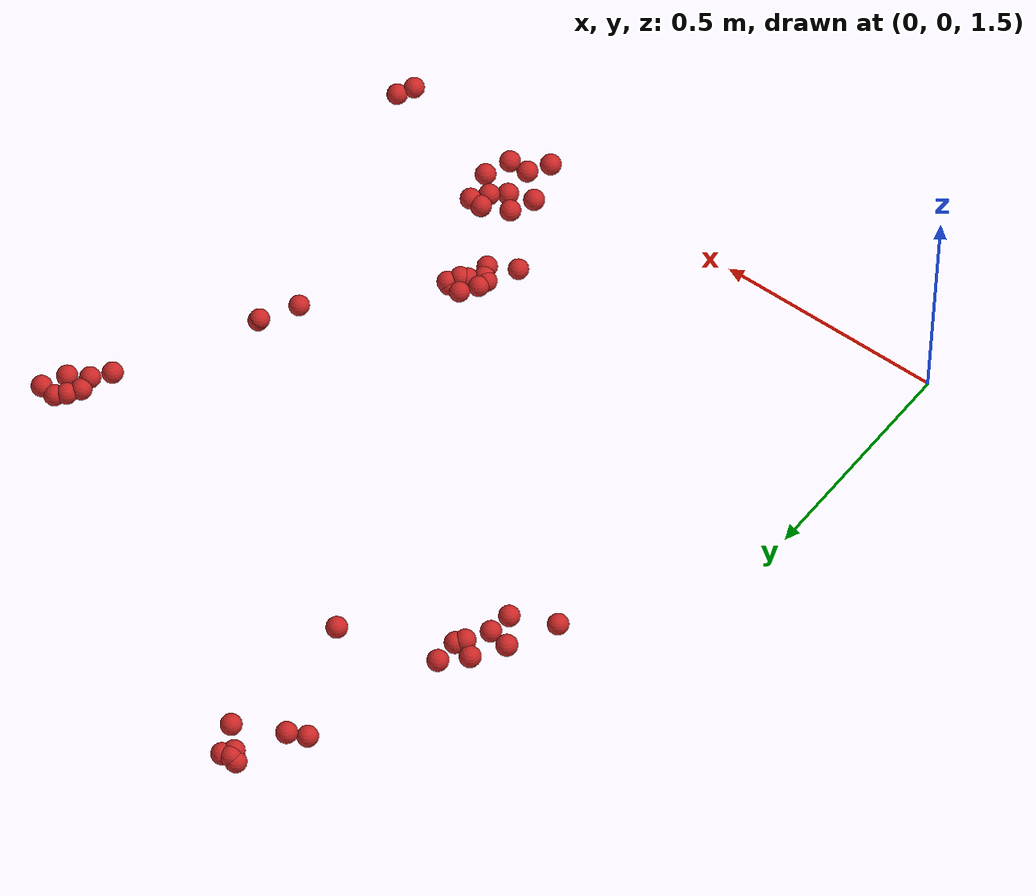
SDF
<sdf version="1.4">
 <model name="fruit_population">
  <static>true</static>
  <link name="fruit_30">
   <pose>0.1953439239124795 0.9947380264028824 1.5883068501369029 0 0 0</pose>
   <collision name="fruit_collision_30"><geometry><sphere><radius>0.022</radius></sphere></geometry></collision>
   <visual name="visual">
    <geometry><sphere><radius>0.022</radius></sphere></geometry>
    <material><script><name>Gazebo/Red</name></script></material>
   </visual>
   <inertial>
    <mass>0.05</mass>
    <inertia>
     <ixx>9.679999999999999e-06</ixx>
     <ixy>0.0</ixy>
     <ixz>0.0</ixz>
     <iyy>9.679999999999999e-06</iyy>
     <iyz>0.0</iyz>
     <izz>9.679999999999999e-06</izz>
    </inertia>
   </inertial>
   <sensor name="fruit_contact_30" type="contact">
    <plugin name="contact_plugin_30" filename="libcontact_plugin.so"/>
    <contact><collision>fruit_collision_30</collision><topic>fruit_contact_topic_30</topic></contact>
   </sensor>
  </link>
  <link name="fruit_57">
   <pose>0.47114865512667564 1.3425937243176058 1.725990794411494 0 0 0</pose>
   <collision name="fruit_collision_57"><geometry><sphere><radius>0.022</radius></sphere></geometry></collision>
   <visual name="visual">
    <geometry><sphere><radius>0.022</radius></sphere></geometry>
    <material><script><name>Gazebo/Red</name></script></material>
   </visual>
   <inertial>
    <mass>0.05</mass>
    <inertia>
     <ixx>9.679999999999999e-06</ixx>
     <ixy>0.0</ixy>
     <ixz>0.0</ixz>
     <iyy>9.679999999999999e-06</iyy>
     <iyz>0.0</iyz>
     <izz>9.679999999999999e-06</izz>
    </inertia>
   </inertial>
   <sensor name="fruit_contact_57" type="contact">
    <plugin name="contact_plugin_57" filename="libcontact_plugin.so"/>
    <contact><collision>fruit_collision_57</collision><topic>fruit_contact_topic_57</topic></contact>
   </sensor>
  </link>
  <link name="fruit_61">
   <pose>0.15351702591759156 1.2174833189412329 1.7927818443910681 0 0 0</pose>
   <collision name="fruit_collision_61"><geometry><sphere><radius>0.022</radius></sphere></geometry></collision>
   <visual name="visual">
    <geometry><sphere><radius>0.022</radius></sphere></geometry>
    <material><script><name>Gazebo/Red</name></script></material>
   </visual>
   <inertial>
    <mass>0.05</mass>
    <inertia>
     <ixx>9.679999999999999e-06</ixx>
     <ixy>0.0</ixy>
     <ixz>0.0</ixz>
     <iyy>9.679999999999999e-06</iyy>
     <iyz>0.0</iyz>
     <izz>9.679999999999999e-06</izz>
    </inertia>
   </inertial>
   <sensor name="fruit_contact_61" type="contact">
    <plugin name="contact_plugin_61" filename="libcontact_plugin.so"/>
    <contact><collision>fruit_collision_61</collision><topic>fruit_contact_topic_61</topic></contact>
   </sensor>
  </link>
  <link name="fruit_88">
   <pose>0.8423228160091369 0.2658816447398887 1.5051182358513138 0 0 0</pose>
   <collision name="fruit_collision_88"><geometry><sphere><radius>0.022</radius></sphere></geometry></collision>
   <visual name="visual">
    <geometry><sphere><radius>0.022</radius></sphere></geometry>
    <material><script><name>Gazebo/Red</name></script></material>
   </visual>
   <inertial>
    <mass>0.05</mass>
    <inertia>
     <ixx>9.679999999999999e-06</ixx>
     <ixy>0.0</ixy>
     <ixz>0.0</ixz>
     <iyy>9.679999999999999e-06</iyy>
     <iyz>0.0</iyz>
     <izz>9.679999999999999e-06</izz>
    </inertia>
   </inertial>
   <sensor name="fruit_contact_88" type="contact">
    <plugin name="contact_plugin_88" filename="libcontact_plugin.so"/>
    <contact><collision>fruit_collision_88</collision><topic>fruit_contact_topic_88</topic></contact>
   </sensor>
  </link>
  <link name="fruit_95">
   <pose>0.7572380153443766 0.32868442509446527 1.845716387686218 0 0 0</pose>
   <collision name="fruit_collision_95"><geometry><sphere><radius>0.022</radius></sphere></geometry></collision>
   <visual name="visual">
    <geometry><sphere><radius>0.022</radius></sphere></geometry>
    <material><script><name>Gazebo/Red</name></script></material>
   </visual>
   <inertial>
    <mass>0.05</mass>
    <inertia>
     <ixx>9.679999999999999e-06</ixx>
     <ixy>0.0</ixy>
     <ixz>0.0</ixz>
     <iyy>9.679999999999999e-06</iyy>
     <iyz>0.0</iyz>
     <izz>9.679999999999999e-06</izz>
    </inertia>
   </inertial>
   <sensor name="fruit_contact_95" type="contact">
    <plugin name="contact_plugin_95" filename="libcontact_plugin.so"/>
    <contact><collision>fruit_collision_95</collision><topic>fruit_contact_topic_95</topic></contact>
   </sensor>
  </link>
  <link name="fruit_115">
   <pose>1.1465218641619523 0.6089338509151114 1.4964389549650658 0 0 0</pose>
   <collision name="fruit_collision_115"><geometry><sphere><radius>0.022</radius></sphere></geometry></collision>
   <visual name="visual">
    <geometry><sphere><radius>0.022</radius></sphere></geometry>
    <material><script><name>Gazebo/Red</name></script></material>
   </visual>
   <inertial>
    <mass>0.05</mass>
    <inertia>
     <ixx>9.679999999999999e-06</ixx>
     <ixy>0.0</ixy>
     <ixz>0.0</ixz>
     <iyy>9.679999999999999e-06</iyy>
     <iyz>0.0</iyz>
     <izz>9.679999999999999e-06</izz>
    </inertia>
   </inertial>
   <sensor name="fruit_contact_115" type="contact">
    <plugin name="contact_plugin_115" filename="libcontact_plugin.so"/>
    <contact><collision>fruit_collision_115</collision><topic>fruit_contact_topic_115</topic></contact>
   </sensor>
  </link>
  <link name="fruit_127">
   <pose>0.4196036037642855 1.5037992499797308 1.5877587647927613 0 0 0</pose>
   <collision name="fruit_collision_127"><geometry><sphere><radius>0.022</radius></sphere></geometry></collision>
   <visual name="visual">
    <geometry><sphere><radius>0.022</radius></sphere></geometry>
    <material><script><name>Gazebo/Red</name></script></material>
   </visual>
   <inertial>
    <mass>0.05</mass>
    <inertia>
     <ixx>9.679999999999999e-06</ixx>
     <ixy>0.0</ixy>
     <ixz>0.0</ixz>
     <iyy>9.679999999999999e-06</iyy>
     <iyz>0.0</iyz>
     <izz>9.679999999999999e-06</izz>
    </inertia>
   </inertial>
   <sensor name="fruit_contact_127" type="contact">
    <plugin name="contact_plugin_127" filename="libcontact_plugin.so"/>
    <contact><collision>fruit_collision_127</collision><topic>fruit_contact_topic_127</topic></contact>
   </sensor>
  </link>
  <link name="fruit_139">
   <pose>0.4129960803627208 1.5744963180922487 1.6832606228239315 0 0 0</pose>
   <collision name="fruit_collision_139"><geometry><sphere><radius>0.022</radius></sphere></geometry></collision>
   <visual name="visual">
    <geometry><sphere><radius>0.022</radius></sphere></geometry>
    <material><script><name>Gazebo/Red</name></script></material>
   </visual>
   <inertial>
    <mass>0.05</mass>
    <inertia>
     <ixx>9.679999999999999e-06</ixx>
     <ixy>0.0</ixy>
     <ixz>0.0</ixz>
     <iyy>9.679999999999999e-06</iyy>
     <iyz>0.0</iyz>
     <izz>9.679999999999999e-06</izz>
    </inertia>
   </inertial>
   <sensor name="fruit_contact_139" type="contact">
    <plugin name="contact_plugin_139" filename="libcontact_plugin.so"/>
    <contact><collision>fruit_collision_139</collision><topic>fruit_contact_topic_139</topic></contact>
   </sensor>
  </link>
  <link name="fruit_142">
   <pose>1.2325543173819957 0.10833704455351517 1.6578817870155198 0 0 0</pose>
   <collision name="fruit_collision_142"><geometry><sphere><radius>0.022</radius></sphere></geometry></collision>
   <visual name="visual">
    <geometry><sphere><radius>0.022</radius></sphere></geometry>
    <material><script><name>Gazebo/Red</name></script></material>
   </visual>
   <inertial>
    <mass>0.05</mass>
    <inertia>
     <ixx>9.679999999999999e-06</ixx>
     <ixy>0.0</ixy>
     <ixz>0.0</ixz>
     <iyy>9.679999999999999e-06</iyy>
     <iyz>0.0</iyz>
     <izz>9.679999999999999e-06</izz>
    </inertia>
   </inertial>
   <sensor name="fruit_contact_142" type="contact">
    <plugin name="contact_plugin_142" filename="libcontact_plugin.so"/>
    <contact><collision>fruit_collision_142</collision><topic>fruit_contact_topic_142</topic></contact>
   </sensor>
  </link>
  <link name="fruit_161">
   <pose>1.1843490267038408 1.1489983251072646 1.7833252640236925 0 0 0</pose>
   <collision name="fruit_collision_161"><geometry><sphere><radius>0.022</radius></sphere></geometry></collision>
   <visual name="visual">
    <geometry><sphere><radius>0.022</radius></sphere></geometry>
    <material><script><name>Gazebo/Red</name></script></material>
   </visual>
   <inertial>
    <mass>0.05</mass>
    <inertia>
     <ixx>9.679999999999999e-06</ixx>
     <ixy>0.0</ixy>
     <ixz>0.0</ixz>
     <iyy>9.679999999999999e-06</iyy>
     <iyz>0.0</iyz>
     <izz>9.679999999999999e-06</izz>
    </inertia>
   </inertial>
   <sensor name="fruit_contact_161" type="contact">
    <plugin name="contact_plugin_161" filename="libcontact_plugin.so"/>
    <contact><collision>fruit_collision_161</collision><topic>fruit_contact_topic_161</topic></contact>
   </sensor>
  </link>
  <link name="fruit_162">
   <pose>0.7930180529071695 0.22501933369284538 1.8330414207158725 0 0 0</pose>
   <collision name="fruit_collision_162"><geometry><sphere><radius>0.022</radius></sphere></geometry></collision>
   <visual name="visual">
    <geometry><sphere><radius>0.022</radius></sphere></geometry>
    <material><script><name>Gazebo/Red</name></script></material>
   </visual>
   <inertial>
    <mass>0.05</mass>
    <inertia>
     <ixx>9.679999999999999e-06</ixx>
     <ixy>0.0</ixy>
     <ixz>0.0</ixz>
     <iyy>9.679999999999999e-06</iyy>
     <iyz>0.0</iyz>
     <izz>9.679999999999999e-06</izz>
    </inertia>
   </inertial>
   <sensor name="fruit_contact_162" type="contact">
    <plugin name="contact_plugin_162" filename="libcontact_plugin.so"/>
    <contact><collision>fruit_collision_162</collision><topic>fruit_contact_topic_162</topic></contact>
   </sensor>
  </link>
  <link name="fruit_198">
   <pose>0.9463491575535632 0.3714392769473238 1.490703312071319 0 0 0</pose>
   <collision name="fruit_collision_198"><geometry><sphere><radius>0.022</radius></sphere></geometry></collision>
   <visual name="visual">
    <geometry><sphere><radius>0.022</radius></sphere></geometry>
    <material><script><name>Gazebo/Red</name></script></material>
   </visual>
   <inertial>
    <mass>0.05</mass>
    <inertia>
     <ixx>9.679999999999999e-06</ixx>
     <ixy>0.0</ixy>
     <ixz>0.0</ixz>
     <iyy>9.679999999999999e-06</iyy>
     <iyz>0.0</iyz>
     <izz>9.679999999999999e-06</izz>
    </inertia>
   </inertial>
   <sensor name="fruit_contact_198" type="contact">
    <plugin name="contact_plugin_198" filename="libcontact_plugin.so"/>
    <contact><collision>fruit_collision_198</collision><topic>fruit_contact_topic_198</topic></contact>
   </sensor>
  </link>
  <link name="fruit_219">
   <pose>0.9114891988321225 0.37542731420298847 1.4875919798439765 0 0 0</pose>
   <collision name="fruit_collision_219"><geometry><sphere><radius>0.022</radius></sphere></geometry></collision>
   <visual name="visual">
    <geometry><sphere><radius>0.022</radius></sphere></geometry>
    <material><script><name>Gazebo/Red</name></script></material>
   </visual>
   <inertial>
    <mass>0.05</mass>
    <inertia>
     <ixx>9.679999999999999e-06</ixx>
     <ixy>0.0</ixy>
     <ixz>0.0</ixz>
     <iyy>9.679999999999999e-06</iyy>
     <iyz>0.0</iyz>
     <izz>9.679999999999999e-06</izz>
    </inertia>
   </inertial>
   <sensor name="fruit_contact_219" type="contact">
    <plugin name="contact_plugin_219" filename="libcontact_plugin.so"/>
    <contact><collision>fruit_collision_219</collision><topic>fruit_contact_topic_219</topic></contact>
   </sensor>
  </link>
  <link name="fruit_225">
   <pose>0.825757297331671 0.3241415983973811 1.81152946052727 0 0 0</pose>
   <collision name="fruit_collision_225"><geometry><sphere><radius>0.022</radius></sphere></geometry></collision>
   <visual name="visual">
    <geometry><sphere><radius>0.022</radius></sphere></geometry>
    <material><script><name>Gazebo/Red</name></script></material>
   </visual>
   <inertial>
    <mass>0.05</mass>
    <inertia>
     <ixx>9.679999999999999e-06</ixx>
     <ixy>0.0</ixy>
     <ixz>0.0</ixz>
     <iyy>9.679999999999999e-06</iyy>
     <iyz>0.0</iyz>
     <izz>9.679999999999999e-06</izz>
    </inertia>
   </inertial>
   <sensor name="fruit_contact_225" type="contact">
    <plugin name="contact_plugin_225" filename="libcontact_plugin.so"/>
    <contact><collision>fruit_collision_225</collision><topic>fruit_contact_topic_225</topic></contact>
   </sensor>
  </link>
  <link name="fruit_226">
   <pose>0.22482942555807292 1.2559534237126855 1.7920383628639043 0 0 0</pose>
   <collision name="fruit_collision_226"><geometry><sphere><radius>0.022</radius></sphere></geometry></collision>
   <visual name="visual">
    <geometry><sphere><radius>0.022</radius></sphere></geometry>
    <material><script><name>Gazebo/Red</name></script></material>
   </visual>
   <inertial>
    <mass>0.05</mass>
    <inertia>
     <ixx>9.679999999999999e-06</ixx>
     <ixy>0.0</ixy>
     <ixz>0.0</ixz>
     <iyy>9.679999999999999e-06</iyy>
     <iyz>0.0</iyz>
     <izz>9.679999999999999e-06</izz>
    </inertia>
   </inertial>
   <sensor name="fruit_contact_226" type="contact">
    <plugin name="contact_plugin_226" filename="libcontact_plugin.so"/>
    <contact><collision>fruit_collision_226</collision><topic>fruit_contact_topic_226</topic></contact>
   </sensor>
  </link>
  <link name="fruit_250">
   <pose>0.48927605386436474 1.6795485319200134 1.6664037193798107 0 0 0</pose>
   <collision name="fruit_collision_250"><geometry><sphere><radius>0.022</radius></sphere></geometry></collision>
   <visual name="visual">
    <geometry><sphere><radius>0.022</radius></sphere></geometry>
    <material><script><name>Gazebo/Red</name></script></material>
   </visual>
   <inertial>
    <mass>0.05</mass>
    <inertia>
     <ixx>9.679999999999999e-06</ixx>
     <ixy>0.0</ixy>
     <ixz>0.0</ixz>
     <iyy>9.679999999999999e-06</iyy>
     <iyz>0.0</iyz>
     <izz>9.679999999999999e-06</izz>
    </inertia>
   </inertial>
   <sensor name="fruit_contact_250" type="contact">
    <plugin name="contact_plugin_250" filename="libcontact_plugin.so"/>
    <contact><collision>fruit_collision_250</collision><topic>fruit_contact_topic_250</topic></contact>
   </sensor>
  </link>
  <link name="fruit_258">
   <pose>0.8406809848028824 0.3952881294105425 1.8292511999713867 0 0 0</pose>
   <collision name="fruit_collision_258"><geometry><sphere><radius>0.022</radius></sphere></geometry></collision>
   <visual name="visual">
    <geometry><sphere><radius>0.022</radius></sphere></geometry>
    <material><script><name>Gazebo/Red</name></script></material>
   </visual>
   <inertial>
    <mass>0.05</mass>
    <inertia>
     <ixx>9.679999999999999e-06</ixx>
     <ixy>0.0</ixy>
     <ixz>0.0</ixz>
     <iyy>9.679999999999999e-06</iyy>
     <iyz>0.0</iyz>
     <izz>9.679999999999999e-06</izz>
    </inertia>
   </inertial>
   <sensor name="fruit_contact_258" type="contact">
    <plugin name="contact_plugin_258" filename="libcontact_plugin.so"/>
    <contact><collision>fruit_collision_258</collision><topic>fruit_contact_topic_258</topic></contact>
   </sensor>
  </link>
  <link name="fruit_267">
   <pose>0.8910781649394658 0.31356556353244475 1.8160510606643032 0 0 0</pose>
   <collision name="fruit_collision_267"><geometry><sphere><radius>0.022</radius></sphere></geometry></collision>
   <visual name="visual">
    <geometry><sphere><radius>0.022</radius></sphere></geometry>
    <material><script><name>Gazebo/Red</name></script></material>
   </visual>
   <inertial>
    <mass>0.05</mass>
    <inertia>
     <ixx>9.679999999999999e-06</ixx>
     <ixy>0.0</ixy>
     <ixz>0.0</ixz>
     <iyy>9.679999999999999e-06</iyy>
     <iyz>0.0</iyz>
     <izz>9.679999999999999e-06</izz>
    </inertia>
   </inertial>
   <sensor name="fruit_contact_267" type="contact">
    <plugin name="contact_plugin_267" filename="libcontact_plugin.so"/>
    <contact><collision>fruit_collision_267</collision><topic>fruit_contact_topic_267</topic></contact>
   </sensor>
  </link>
  <link name="fruit_271">
   <pose>0.940088516851205 0.3719517116784833 1.485086392965216 0 0 0</pose>
   <collision name="fruit_collision_271"><geometry><sphere><radius>0.022</radius></sphere></geometry></collision>
   <visual name="visual">
    <geometry><sphere><radius>0.022</radius></sphere></geometry>
    <material><script><name>Gazebo/Red</name></script></material>
   </visual>
   <inertial>
    <mass>0.05</mass>
    <inertia>
     <ixx>9.679999999999999e-06</ixx>
     <ixy>0.0</ixy>
     <ixz>0.0</ixz>
     <iyy>9.679999999999999e-06</iyy>
     <iyz>0.0</iyz>
     <izz>9.679999999999999e-06</izz>
    </inertia>
   </inertial>
   <sensor name="fruit_contact_271" type="contact">
    <plugin name="contact_plugin_271" filename="libcontact_plugin.so"/>
    <contact><collision>fruit_collision_271</collision><topic>fruit_contact_topic_271</topic></contact>
   </sensor>
  </link>
  <link name="fruit_298">
   <pose>0.7826878632884515 0.3740382635243226 1.837123454174254 0 0 0</pose>
   <collision name="fruit_collision_298"><geometry><sphere><radius>0.022</radius></sphere></geometry></collision>
   <visual name="visual">
    <geometry><sphere><radius>0.022</radius></sphere></geometry>
    <material><script><name>Gazebo/Red</name></script></material>
   </visual>
   <inertial>
    <mass>0.05</mass>
    <inertia>
     <ixx>9.679999999999999e-06</ixx>
     <ixy>0.0</ixy>
     <ixz>0.0</ixz>
     <iyy>9.679999999999999e-06</iyy>
     <iyz>0.0</iyz>
     <izz>9.679999999999999e-06</izz>
    </inertia>
   </inertial>
   <sensor name="fruit_contact_298" type="contact">
    <plugin name="contact_plugin_298" filename="libcontact_plugin.so"/>
    <contact><collision>fruit_collision_298</collision><topic>fruit_contact_topic_298</topic></contact>
   </sensor>
  </link>
  <link name="fruit_303">
   <pose>0.24411763191171787 1.316958065031089 1.7767340332265127 0 0 0</pose>
   <collision name="fruit_collision_303"><geometry><sphere><radius>0.022</radius></sphere></geometry></collision>
   <visual name="visual">
    <geometry><sphere><radius>0.022</radius></sphere></geometry>
    <material><script><name>Gazebo/Red</name></script></material>
   </visual>
   <inertial>
    <mass>0.05</mass>
    <inertia>
     <ixx>9.679999999999999e-06</ixx>
     <ixy>0.0</ixy>
     <ixz>0.0</ixz>
     <iyy>9.679999999999999e-06</iyy>
     <iyz>0.0</iyz>
     <izz>9.679999999999999e-06</izz>
    </inertia>
   </inertial>
   <sensor name="fruit_contact_303" type="contact">
    <plugin name="contact_plugin_303" filename="libcontact_plugin.so"/>
    <contact><collision>fruit_collision_303</collision><topic>fruit_contact_topic_303</topic></contact>
   </sensor>
  </link>
  <link name="fruit_313">
   <pose>0.2959741357857225 1.079869055589083 1.5743773590550187 0 0 0</pose>
   <collision name="fruit_collision_313"><geometry><sphere><radius>0.022</radius></sphere></geometry></collision>
   <visual name="visual">
    <geometry><sphere><radius>0.022</radius></sphere></geometry>
    <material><script><name>Gazebo/Red</name></script></material>
   </visual>
   <inertial>
    <mass>0.05</mass>
    <inertia>
     <ixx>9.679999999999999e-06</ixx>
     <ixy>0.0</ixy>
     <ixz>0.0</ixz>
     <iyy>9.679999999999999e-06</iyy>
     <iyz>0.0</iyz>
     <izz>9.679999999999999e-06</izz>
    </inertia>
   </inertial>
   <sensor name="fruit_contact_313" type="contact">
    <plugin name="contact_plugin_313" filename="libcontact_plugin.so"/>
    <contact><collision>fruit_collision_313</collision><topic>fruit_contact_topic_313</topic></contact>
   </sensor>
  </link>
  <link name="fruit_329">
   <pose>1.2116441522920494 1.2140231173309097 1.7749909301637465 0 0 0</pose>
   <collision name="fruit_collision_329"><geometry><sphere><radius>0.022</radius></sphere></geometry></collision>
   <visual name="visual">
    <geometry><sphere><radius>0.022</radius></sphere></geometry>
    <material><script><name>Gazebo/Red</name></script></material>
   </visual>
   <inertial>
    <mass>0.05</mass>
    <inertia>
     <ixx>9.679999999999999e-06</ixx>
     <ixy>0.0</ixy>
     <ixz>0.0</ixz>
     <iyy>9.679999999999999e-06</iyy>
     <iyz>0.0</iyz>
     <izz>9.679999999999999e-06</izz>
    </inertia>
   </inertial>
   <sensor name="fruit_contact_329" type="contact">
    <plugin name="contact_plugin_329" filename="libcontact_plugin.so"/>
    <contact><collision>fruit_collision_329</collision><topic>fruit_contact_topic_329</topic></contact>
   </sensor>
  </link>
  <link name="fruit_363">
   <pose>0.8824784132266889 0.32079947213528076 1.4897939472521613 0 0 0</pose>
   <collision name="fruit_collision_363"><geometry><sphere><radius>0.022</radius></sphere></geometry></collision>
   <visual name="visual">
    <geometry><sphere><radius>0.022</radius></sphere></geometry>
    <material><script><name>Gazebo/Red</name></script></material>
   </visual>
   <inertial>
    <mass>0.05</mass>
    <inertia>
     <ixx>9.679999999999999e-06</ixx>
     <ixy>0.0</ixy>
     <ixz>0.0</ixz>
     <iyy>9.679999999999999e-06</iyy>
     <iyz>0.0</iyz>
     <izz>9.679999999999999e-06</izz>
    </inertia>
   </inertial>
   <sensor name="fruit_contact_363" type="contact">
    <plugin name="contact_plugin_363" filename="libcontact_plugin.so"/>
    <contact><collision>fruit_collision_363</collision><topic>fruit_contact_topic_363</topic></contact>
   </sensor>
  </link>
  <link name="fruit_398">
   <pose>0.9031441780570889 0.2920876431144873 1.4948347089800738 0 0 0</pose>
   <collision name="fruit_collision_398"><geometry><sphere><radius>0.022</radius></sphere></geometry></collision>
   <visual name="visual">
    <geometry><sphere><radius>0.022</radius></sphere></geometry>
    <material><script><name>Gazebo/Red</name></script></material>
   </visual>
   <inertial>
    <mass>0.05</mass>
    <inertia>
     <ixx>9.679999999999999e-06</ixx>
     <ixy>0.0</ixy>
     <ixz>0.0</ixz>
     <iyy>9.679999999999999e-06</iyy>
     <iyz>0.0</iyz>
     <izz>9.679999999999999e-06</izz>
    </inertia>
   </inertial>
   <sensor name="fruit_contact_398" type="contact">
    <plugin name="contact_plugin_398" filename="libcontact_plugin.so"/>
    <contact><collision>fruit_collision_398</collision><topic>fruit_contact_topic_398</topic></contact>
   </sensor>
  </link>
  <link name="fruit_415">
   <pose>0.45666260715465185 1.67686071866723 1.6642265999402417 0 0 0</pose>
   <collision name="fruit_collision_415"><geometry><sphere><radius>0.022</radius></sphere></geometry></collision>
   <visual name="visual">
    <geometry><sphere><radius>0.022</radius></sphere></geometry>
    <material><script><name>Gazebo/Red</name></script></material>
   </visual>
   <inertial>
    <mass>0.05</mass>
    <inertia>
     <ixx>9.679999999999999e-06</ixx>
     <ixy>0.0</ixy>
     <ixz>0.0</ixz>
     <iyy>9.679999999999999e-06</iyy>
     <iyz>0.0</iyz>
     <izz>9.679999999999999e-06</izz>
    </inertia>
   </inertial>
   <sensor name="fruit_contact_415" type="contact">
    <plugin name="contact_plugin_415" filename="libcontact_plugin.so"/>
    <contact><collision>fruit_collision_415</collision><topic>fruit_contact_topic_415</topic></contact>
   </sensor>
  </link>
  <link name="fruit_470">
   <pose>1.2567121758646895 1.2031994960584476 1.772798370968893 0 0 0</pose>
   <collision name="fruit_collision_470"><geometry><sphere><radius>0.022</radius></sphere></geometry></collision>
   <visual name="visual">
    <geometry><sphere><radius>0.022</radius></sphere></geometry>
    <material><script><name>Gazebo/Red</name></script></material>
   </visual>
   <inertial>
    <mass>0.05</mass>
    <inertia>
     <ixx>9.679999999999999e-06</ixx>
     <ixy>0.0</ixy>
     <ixz>0.0</ixz>
     <iyy>9.679999999999999e-06</iyy>
     <iyz>0.0</iyz>
     <izz>9.679999999999999e-06</izz>
    </inertia>
   </inertial>
   <sensor name="fruit_contact_470" type="contact">
    <plugin name="contact_plugin_470" filename="libcontact_plugin.so"/>
    <contact><collision>fruit_collision_470</collision><topic>fruit_contact_topic_470</topic></contact>
   </sensor>
  </link>
  <link name="fruit_479">
   <pose>1.2815455421277329 1.2525161872644923 1.7706769535346538 0 0 0</pose>
   <collision name="fruit_collision_479"><geometry><sphere><radius>0.022</radius></sphere></geometry></collision>
   <visual name="visual">
    <geometry><sphere><radius>0.022</radius></sphere></geometry>
    <material><script><name>Gazebo/Red</name></script></material>
   </visual>
   <inertial>
    <mass>0.05</mass>
    <inertia>
     <ixx>9.679999999999999e-06</ixx>
     <ixy>0.0</ixy>
     <ixz>0.0</ixz>
     <iyy>9.679999999999999e-06</iyy>
     <iyz>0.0</iyz>
     <izz>9.679999999999999e-06</izz>
    </inertia>
   </inertial>
   <sensor name="fruit_contact_479" type="contact">
    <plugin name="contact_plugin_479" filename="libcontact_plugin.so"/>
    <contact><collision>fruit_collision_479</collision><topic>fruit_contact_topic_479</topic></contact>
   </sensor>
  </link>
  <link name="fruit_511">
   <pose>0.4690981213565273 1.6764857617529736 1.6719497670665402 0 0 0</pose>
   <collision name="fruit_collision_511"><geometry><sphere><radius>0.022</radius></sphere></geometry></collision>
   <visual name="visual">
    <geometry><sphere><radius>0.022</radius></sphere></geometry>
    <material><script><name>Gazebo/Red</name></script></material>
   </visual>
   <inertial>
    <mass>0.05</mass>
    <inertia>
     <ixx>9.679999999999999e-06</ixx>
     <ixy>0.0</ixy>
     <ixz>0.0</ixz>
     <iyy>9.679999999999999e-06</iyy>
     <iyz>0.0</iyz>
     <izz>9.679999999999999e-06</izz>
    </inertia>
   </inertial>
   <sensor name="fruit_contact_511" type="contact">
    <plugin name="contact_plugin_511" filename="libcontact_plugin.so"/>
    <contact><collision>fruit_collision_511</collision><topic>fruit_contact_topic_511</topic></contact>
   </sensor>
  </link>
  <link name="fruit_515">
   <pose>1.192076152510202 0.6830361380831811 1.490522250865585 0 0 0</pose>
   <collision name="fruit_collision_515"><geometry><sphere><radius>0.022</radius></sphere></geometry></collision>
   <visual name="visual">
    <geometry><sphere><radius>0.022</radius></sphere></geometry>
    <material><script><name>Gazebo/Red</name></script></material>
   </visual>
   <inertial>
    <mass>0.05</mass>
    <inertia>
     <ixx>9.679999999999999e-06</ixx>
     <ixy>0.0</ixy>
     <ixz>0.0</ixz>
     <iyy>9.679999999999999e-06</iyy>
     <iyz>0.0</iyz>
     <izz>9.679999999999999e-06</izz>
    </inertia>
   </inertial>
   <sensor name="fruit_contact_515" type="contact">
    <plugin name="contact_plugin_515" filename="libcontact_plugin.so"/>
    <contact><collision>fruit_collision_515</collision><topic>fruit_contact_topic_515</topic></contact>
   </sensor>
  </link>
  <link name="fruit_528">
   <pose>0.885931326582728 0.3434628142420193 1.493162627700119 0 0 0</pose>
   <collision name="fruit_collision_528"><geometry><sphere><radius>0.022</radius></sphere></geometry></collision>
   <visual name="visual">
    <geometry><sphere><radius>0.022</radius></sphere></geometry>
    <material><script><name>Gazebo/Red</name></script></material>
   </visual>
   <inertial>
    <mass>0.05</mass>
    <inertia>
     <ixx>9.679999999999999e-06</ixx>
     <ixy>0.0</ixy>
     <ixz>0.0</ixz>
     <iyy>9.679999999999999e-06</iyy>
     <iyz>0.0</iyz>
     <izz>9.679999999999999e-06</izz>
    </inertia>
   </inertial>
   <sensor name="fruit_contact_528" type="contact">
    <plugin name="contact_plugin_528" filename="libcontact_plugin.so"/>
    <contact><collision>fruit_collision_528</collision><topic>fruit_contact_topic_528</topic></contact>
   </sensor>
  </link>
  <link name="fruit_545">
   <pose>0.841687618452425 0.3667553433022155 1.8380721997524048 0 0 0</pose>
   <collision name="fruit_collision_545"><geometry><sphere><radius>0.022</radius></sphere></geometry></collision>
   <visual name="visual">
    <geometry><sphere><radius>0.022</radius></sphere></geometry>
    <material><script><name>Gazebo/Red</name></script></material>
   </visual>
   <inertial>
    <mass>0.05</mass>
    <inertia>
     <ixx>9.679999999999999e-06</ixx>
     <ixy>0.0</ixy>
     <ixz>0.0</ixz>
     <iyy>9.679999999999999e-06</iyy>
     <iyz>0.0</iyz>
     <izz>9.679999999999999e-06</izz>
    </inertia>
   </inertial>
   <sensor name="fruit_contact_545" type="contact">
    <plugin name="contact_plugin_545" filename="libcontact_plugin.so"/>
    <contact><collision>fruit_collision_545</collision><topic>fruit_contact_topic_545</topic></contact>
   </sensor>
  </link>
  <link name="fruit_548">
   <pose>0.47235148935240345 1.6621931337257991 1.670818578009486 0 0 0</pose>
   <collision name="fruit_collision_548"><geometry><sphere><radius>0.022</radius></sphere></geometry></collision>
   <visual name="visual">
    <geometry><sphere><radius>0.022</radius></sphere></geometry>
    <material><script><name>Gazebo/Red</name></script></material>
   </visual>
   <inertial>
    <mass>0.05</mass>
    <inertia>
     <ixx>9.679999999999999e-06</ixx>
     <ixy>0.0</ixy>
     <ixz>0.0</ixz>
     <iyy>9.679999999999999e-06</iyy>
     <iyz>0.0</iyz>
     <izz>9.679999999999999e-06</izz>
    </inertia>
   </inertial>
   <sensor name="fruit_contact_548" type="contact">
    <plugin name="contact_plugin_548" filename="libcontact_plugin.so"/>
    <contact><collision>fruit_collision_548</collision><topic>fruit_contact_topic_548</topic></contact>
   </sensor>
  </link>
  <link name="fruit_561">
   <pose>0.5145754735396486 1.6183953355404592 1.6732774028466046 0 0 0</pose>
   <collision name="fruit_collision_561"><geometry><sphere><radius>0.022</radius></sphere></geometry></collision>
   <visual name="visual">
    <geometry><sphere><radius>0.022</radius></sphere></geometry>
    <material><script><name>Gazebo/Red</name></script></material>
   </visual>
   <inertial>
    <mass>0.05</mass>
    <inertia>
     <ixx>9.679999999999999e-06</ixx>
     <ixy>0.0</ixy>
     <ixz>0.0</ixz>
     <iyy>9.679999999999999e-06</iyy>
     <iyz>0.0</iyz>
     <izz>9.679999999999999e-06</izz>
    </inertia>
   </inertial>
   <sensor name="fruit_contact_561" type="contact">
    <plugin name="contact_plugin_561" filename="libcontact_plugin.so"/>
    <contact><collision>fruit_collision_561</collision><topic>fruit_contact_topic_561</topic></contact>
   </sensor>
  </link>
  <link name="fruit_562">
   <pose>1.259126574216999 0.13244521686876323 1.6409453376165972 0 0 0</pose>
   <collision name="fruit_collision_562"><geometry><sphere><radius>0.022</radius></sphere></geometry></collision>
   <visual name="visual">
    <geometry><sphere><radius>0.022</radius></sphere></geometry>
    <material><script><name>Gazebo/Red</name></script></material>
   </visual>
   <inertial>
    <mass>0.05</mass>
    <inertia>
     <ixx>9.679999999999999e-06</ixx>
     <ixy>0.0</ixy>
     <ixz>0.0</ixz>
     <iyy>9.679999999999999e-06</iyy>
     <iyz>0.0</iyz>
     <izz>9.679999999999999e-06</izz>
    </inertia>
   </inertial>
   <sensor name="fruit_contact_562" type="contact">
    <plugin name="contact_plugin_562" filename="libcontact_plugin.so"/>
    <contact><collision>fruit_collision_562</collision><topic>fruit_contact_topic_562</topic></contact>
   </sensor>
  </link>
  <link name="fruit_572">
   <pose>1.2549609326519426 0.13617036566292195 1.6474770458253372 0 0 0</pose>
   <collision name="fruit_collision_572"><geometry><sphere><radius>0.022</radius></sphere></geometry></collision>
   <visual name="visual">
    <geometry><sphere><radius>0.022</radius></sphere></geometry>
    <material><script><name>Gazebo/Red</name></script></material>
   </visual>
   <inertial>
    <mass>0.05</mass>
    <inertia>
     <ixx>9.679999999999999e-06</ixx>
     <ixy>0.0</ixy>
     <ixz>0.0</ixz>
     <iyy>9.679999999999999e-06</iyy>
     <iyz>0.0</iyz>
     <izz>9.679999999999999e-06</izz>
    </inertia>
   </inertial>
   <sensor name="fruit_contact_572" type="contact">
    <plugin name="contact_plugin_572" filename="libcontact_plugin.so"/>
    <contact><collision>fruit_collision_572</collision><topic>fruit_contact_topic_572</topic></contact>
   </sensor>
  </link>
  <link name="fruit_575">
   <pose>0.8936275692263456 0.31361579069237727 1.4912423260148677 0 0 0</pose>
   <collision name="fruit_collision_575"><geometry><sphere><radius>0.022</radius></sphere></geometry></collision>
   <visual name="visual">
    <geometry><sphere><radius>0.022</radius></sphere></geometry>
    <material><script><name>Gazebo/Red</name></script></material>
   </visual>
   <inertial>
    <mass>0.05</mass>
    <inertia>
     <ixx>9.679999999999999e-06</ixx>
     <ixy>0.0</ixy>
     <ixz>0.0</ixz>
     <iyy>9.679999999999999e-06</iyy>
     <iyz>0.0</iyz>
     <izz>9.679999999999999e-06</izz>
    </inertia>
   </inertial>
   <sensor name="fruit_contact_575" type="contact">
    <plugin name="contact_plugin_575" filename="libcontact_plugin.so"/>
    <contact><collision>fruit_collision_575</collision><topic>fruit_contact_topic_575</topic></contact>
   </sensor>
  </link>
  <link name="fruit_584">
   <pose>0.2927413274449532 1.0245340641695453 1.5683038739721704 0 0 0</pose>
   <collision name="fruit_collision_584"><geometry><sphere><radius>0.022</radius></sphere></geometry></collision>
   <visual name="visual">
    <geometry><sphere><radius>0.022</radius></sphere></geometry>
    <material><script><name>Gazebo/Red</name></script></material>
   </visual>
   <inertial>
    <mass>0.05</mass>
    <inertia>
     <ixx>9.679999999999999e-06</ixx>
     <ixy>0.0</ixy>
     <ixz>0.0</ixz>
     <iyy>9.679999999999999e-06</iyy>
     <iyz>0.0</iyz>
     <izz>9.679999999999999e-06</izz>
    </inertia>
   </inertial>
   <sensor name="fruit_contact_584" type="contact">
    <plugin name="contact_plugin_584" filename="libcontact_plugin.so"/>
    <contact><collision>fruit_collision_584</collision><topic>fruit_contact_topic_584</topic></contact>
   </sensor>
  </link>
  <link name="fruit_646">
   <pose>0.9290773433262839 0.349042917613814 1.4964725019220257 0 0 0</pose>
   <collision name="fruit_collision_646"><geometry><sphere><radius>0.022</radius></sphere></geometry></collision>
   <visual name="visual">
    <geometry><sphere><radius>0.022</radius></sphere></geometry>
    <material><script><name>Gazebo/Red</name></script></material>
   </visual>
   <inertial>
    <mass>0.05</mass>
    <inertia>
     <ixx>9.679999999999999e-06</ixx>
     <ixy>0.0</ixy>
     <ixz>0.0</ixz>
     <iyy>9.679999999999999e-06</iyy>
     <iyz>0.0</iyz>
     <izz>9.679999999999999e-06</izz>
    </inertia>
   </inertial>
   <sensor name="fruit_contact_646" type="contact">
    <plugin name="contact_plugin_646" filename="libcontact_plugin.so"/>
    <contact><collision>fruit_collision_646</collision><topic>fruit_contact_topic_646</topic></contact>
   </sensor>
  </link>
  <link name="fruit_649">
   <pose>0.8949316412956827 0.3368573708493974 1.4841298947277548 0 0 0</pose>
   <collision name="fruit_collision_649"><geometry><sphere><radius>0.022</radius></sphere></geometry></collision>
   <visual name="visual">
    <geometry><sphere><radius>0.022</radius></sphere></geometry>
    <material><script><name>Gazebo/Red</name></script></material>
   </visual>
   <inertial>
    <mass>0.05</mass>
    <inertia>
     <ixx>9.679999999999999e-06</ixx>
     <ixy>0.0</ixy>
     <ixz>0.0</ixz>
     <iyy>9.679999999999999e-06</iyy>
     <iyz>0.0</iyz>
     <izz>9.679999999999999e-06</izz>
    </inertia>
   </inertial>
   <sensor name="fruit_contact_649" type="contact">
    <plugin name="contact_plugin_649" filename="libcontact_plugin.so"/>
    <contact><collision>fruit_collision_649</collision><topic>fruit_contact_topic_649</topic></contact>
   </sensor>
  </link>
  <link name="fruit_665">
   <pose>0.8297158873265543 0.25426356573555736 1.8122423728081982 0 0 0</pose>
   <collision name="fruit_collision_665"><geometry><sphere><radius>0.022</radius></sphere></geometry></collision>
   <visual name="visual">
    <geometry><sphere><radius>0.022</radius></sphere></geometry>
    <material><script><name>Gazebo/Red</name></script></material>
   </visual>
   <inertial>
    <mass>0.05</mass>
    <inertia>
     <ixx>9.679999999999999e-06</ixx>
     <ixy>0.0</ixy>
     <ixz>0.0</ixz>
     <iyy>9.679999999999999e-06</iyy>
     <iyz>0.0</iyz>
     <izz>9.679999999999999e-06</izz>
    </inertia>
   </inertial>
   <sensor name="fruit_contact_665" type="contact">
    <plugin name="contact_plugin_665" filename="libcontact_plugin.so"/>
    <contact><collision>fruit_collision_665</collision><topic>fruit_contact_topic_665</topic></contact>
   </sensor>
  </link>
  <link name="fruit_672">
   <pose>0.23928082521416513 1.2688043699737046 1.786313061342241 0 0 0</pose>
   <collision name="fruit_collision_672"><geometry><sphere><radius>0.022</radius></sphere></geometry></collision>
   <visual name="visual">
    <geometry><sphere><radius>0.022</radius></sphere></geometry>
    <material><script><name>Gazebo/Red</name></script></material>
   </visual>
   <inertial>
    <mass>0.05</mass>
    <inertia>
     <ixx>9.679999999999999e-06</ixx>
     <ixy>0.0</ixy>
     <ixz>0.0</ixz>
     <iyy>9.679999999999999e-06</iyy>
     <iyz>0.0</iyz>
     <izz>9.679999999999999e-06</izz>
    </inertia>
   </inertial>
   <sensor name="fruit_contact_672" type="contact">
    <plugin name="contact_plugin_672" filename="libcontact_plugin.so"/>
    <contact><collision>fruit_collision_672</collision><topic>fruit_contact_topic_672</topic></contact>
   </sensor>
  </link>
  <link name="fruit_676">
   <pose>0.8648897250644622 0.39776011932001265 1.8376169155155344 0 0 0</pose>
   <collision name="fruit_collision_676"><geometry><sphere><radius>0.022</radius></sphere></geometry></collision>
   <visual name="visual">
    <geometry><sphere><radius>0.022</radius></sphere></geometry>
    <material><script><name>Gazebo/Red</name></script></material>
   </visual>
   <inertial>
    <mass>0.05</mass>
    <inertia>
     <ixx>9.679999999999999e-06</ixx>
     <ixy>0.0</ixy>
     <ixz>0.0</ixz>
     <iyy>9.679999999999999e-06</iyy>
     <iyz>0.0</iyz>
     <izz>9.679999999999999e-06</izz>
    </inertia>
   </inertial>
   <sensor name="fruit_contact_676" type="contact">
    <plugin name="contact_plugin_676" filename="libcontact_plugin.so"/>
    <contact><collision>fruit_collision_676</collision><topic>fruit_contact_topic_676</topic></contact>
   </sensor>
  </link>
  <link name="fruit_677">
   <pose>0.19805333805880643 1.2751844730095967 1.781711483167524 0 0 0</pose>
   <collision name="fruit_collision_677"><geometry><sphere><radius>0.022</radius></sphere></geometry></collision>
   <visual name="visual">
    <geometry><sphere><radius>0.022</radius></sphere></geometry>
    <material><script><name>Gazebo/Red</name></script></material>
   </visual>
   <inertial>
    <mass>0.05</mass>
    <inertia>
     <ixx>9.679999999999999e-06</ixx>
     <ixy>0.0</ixy>
     <ixz>0.0</ixz>
     <iyy>9.679999999999999e-06</iyy>
     <iyz>0.0</iyz>
     <izz>9.679999999999999e-06</izz>
    </inertia>
   </inertial>
   <sensor name="fruit_contact_677" type="contact">
    <plugin name="contact_plugin_677" filename="libcontact_plugin.so"/>
    <contact><collision>fruit_collision_677</collision><topic>fruit_contact_topic_677</topic></contact>
   </sensor>
  </link>
  <link name="fruit_678">
   <pose>0.9174930846208732 0.3392167474322946 1.4922131870113384 0 0 0</pose>
   <collision name="fruit_collision_678"><geometry><sphere><radius>0.022</radius></sphere></geometry></collision>
   <visual name="visual">
    <geometry><sphere><radius>0.022</radius></sphere></geometry>
    <material><script><name>Gazebo/Red</name></script></material>
   </visual>
   <inertial>
    <mass>0.05</mass>
    <inertia>
     <ixx>9.679999999999999e-06</ixx>
     <ixy>0.0</ixy>
     <ixz>0.0</ixz>
     <iyy>9.679999999999999e-06</iyy>
     <iyz>0.0</iyz>
     <izz>9.679999999999999e-06</izz>
    </inertia>
   </inertial>
   <sensor name="fruit_contact_678" type="contact">
    <plugin name="contact_plugin_678" filename="libcontact_plugin.so"/>
    <contact><collision>fruit_collision_678</collision><topic>fruit_contact_topic_678</topic></contact>
   </sensor>
  </link>
  <link name="fruit_701">
   <pose>0.8379553060149387 0.3986622307155727 1.8357592198493624 0 0 0</pose>
   <collision name="fruit_collision_701"><geometry><sphere><radius>0.022</radius></sphere></geometry></collision>
   <visual name="visual">
    <geometry><sphere><radius>0.022</radius></sphere></geometry>
    <material><script><name>Gazebo/Red</name></script></material>
   </visual>
   <inertial>
    <mass>0.05</mass>
    <inertia>
     <ixx>9.679999999999999e-06</ixx>
     <ixy>0.0</ixy>
     <ixz>0.0</ixz>
     <iyy>9.679999999999999e-06</iyy>
     <iyz>0.0</iyz>
     <izz>9.679999999999999e-06</izz>
    </inertia>
   </inertial>
   <sensor name="fruit_contact_701" type="contact">
    <plugin name="contact_plugin_701" filename="libcontact_plugin.so"/>
    <contact><collision>fruit_collision_701</collision><topic>fruit_contact_topic_701</topic></contact>
   </sensor>
  </link>
  <link name="fruit_733">
   <pose>0.8671564158033682 0.2633835658126463 1.8260350410945234 0 0 0</pose>
   <collision name="fruit_collision_733"><geometry><sphere><radius>0.022</radius></sphere></geometry></collision>
   <visual name="visual">
    <geometry><sphere><radius>0.022</radius></sphere></geometry>
    <material><script><name>Gazebo/Red</name></script></material>
   </visual>
   <inertial>
    <mass>0.05</mass>
    <inertia>
     <ixx>9.679999999999999e-06</ixx>
     <ixy>0.0</ixy>
     <ixz>0.0</ixz>
     <iyy>9.679999999999999e-06</iyy>
     <iyz>0.0</iyz>
     <izz>9.679999999999999e-06</izz>
    </inertia>
   </inertial>
   <sensor name="fruit_contact_733" type="contact">
    <plugin name="contact_plugin_733" filename="libcontact_plugin.so"/>
    <contact><collision>fruit_collision_733</collision><topic>fruit_contact_topic_733</topic></contact>
   </sensor>
  </link>
  <link name="fruit_739">
   <pose>1.2504609240616995 1.2515055451442383 1.7642520528860166 0 0 0</pose>
   <collision name="fruit_collision_739"><geometry><sphere><radius>0.022</radius></sphere></geometry></collision>
   <visual name="visual">
    <geometry><sphere><radius>0.022</radius></sphere></geometry>
    <material><script><name>Gazebo/Red</name></script></material>
   </visual>
   <inertial>
    <mass>0.05</mass>
    <inertia>
     <ixx>9.679999999999999e-06</ixx>
     <ixy>0.0</ixy>
     <ixz>0.0</ixz>
     <iyy>9.679999999999999e-06</iyy>
     <iyz>0.0</iyz>
     <izz>9.679999999999999e-06</izz>
    </inertia>
   </inertial>
   <sensor name="fruit_contact_739" type="contact">
    <plugin name="contact_plugin_739" filename="libcontact_plugin.so"/>
    <contact><collision>fruit_collision_739</collision><topic>fruit_contact_topic_739</topic></contact>
   </sensor>
  </link>
  <link name="fruit_793">
   <pose>1.2298718962056683 1.2371355055530266 1.7708613392770676 0 0 0</pose>
   <collision name="fruit_collision_793"><geometry><sphere><radius>0.022</radius></sphere></geometry></collision>
   <visual name="visual">
    <geometry><sphere><radius>0.022</radius></sphere></geometry>
    <material><script><name>Gazebo/Red</name></script></material>
   </visual>
   <inertial>
    <mass>0.05</mass>
    <inertia>
     <ixx>9.679999999999999e-06</ixx>
     <ixy>0.0</ixy>
     <ixz>0.0</ixz>
     <iyy>9.679999999999999e-06</iyy>
     <iyz>0.0</iyz>
     <izz>9.679999999999999e-06</izz>
    </inertia>
   </inertial>
   <sensor name="fruit_contact_793" type="contact">
    <plugin name="contact_plugin_793" filename="libcontact_plugin.so"/>
    <contact><collision>fruit_collision_793</collision><topic>fruit_contact_topic_793</topic></contact>
   </sensor>
  </link>
  <link name="fruit_811">
   <pose>1.2128886109379018 1.1843311602789899 1.7816878776639236 0 0 0</pose>
   <collision name="fruit_collision_811"><geometry><sphere><radius>0.022</radius></sphere></geometry></collision>
   <visual name="visual">
    <geometry><sphere><radius>0.022</radius></sphere></geometry>
    <material><script><name>Gazebo/Red</name></script></material>
   </visual>
   <inertial>
    <mass>0.05</mass>
    <inertia>
     <ixx>9.679999999999999e-06</ixx>
     <ixy>0.0</ixy>
     <ixz>0.0</ixz>
     <iyy>9.679999999999999e-06</iyy>
     <iyz>0.0</iyz>
     <izz>9.679999999999999e-06</izz>
    </inertia>
   </inertial>
   <sensor name="fruit_contact_811" type="contact">
    <plugin name="contact_plugin_811" filename="libcontact_plugin.so"/>
    <contact><collision>fruit_collision_811</collision><topic>fruit_contact_topic_811</topic></contact>
   </sensor>
  </link>
  <link name="fruit_823">
   <pose>1.193668698954658 0.6848072238216448 1.4865841683429488 0 0 0</pose>
   <collision name="fruit_collision_823"><geometry><sphere><radius>0.022</radius></sphere></geometry></collision>
   <visual name="visual">
    <geometry><sphere><radius>0.022</radius></sphere></geometry>
    <material><script><name>Gazebo/Red</name></script></material>
   </visual>
   <inertial>
    <mass>0.05</mass>
    <inertia>
     <ixx>9.679999999999999e-06</ixx>
     <ixy>0.0</ixy>
     <ixz>0.0</ixz>
     <iyy>9.679999999999999e-06</iyy>
     <iyz>0.0</iyz>
     <izz>9.679999999999999e-06</izz>
    </inertia>
   </inertial>
   <sensor name="fruit_contact_823" type="contact">
    <plugin name="contact_plugin_823" filename="libcontact_plugin.so"/>
    <contact><collision>fruit_collision_823</collision><topic>fruit_contact_topic_823</topic></contact>
   </sensor>
  </link>
 </model>
</sdf>
